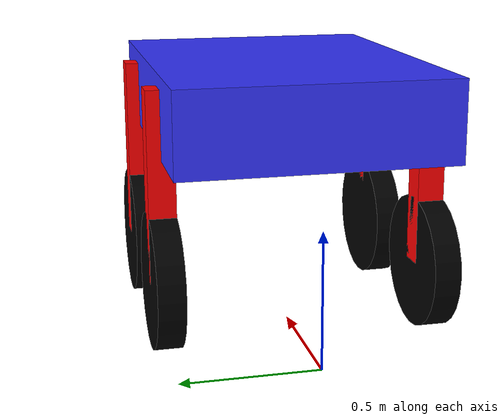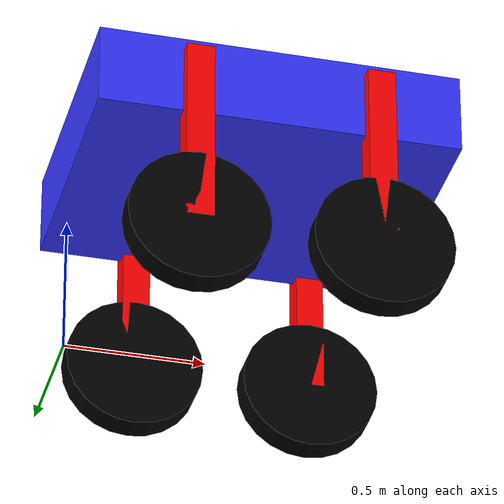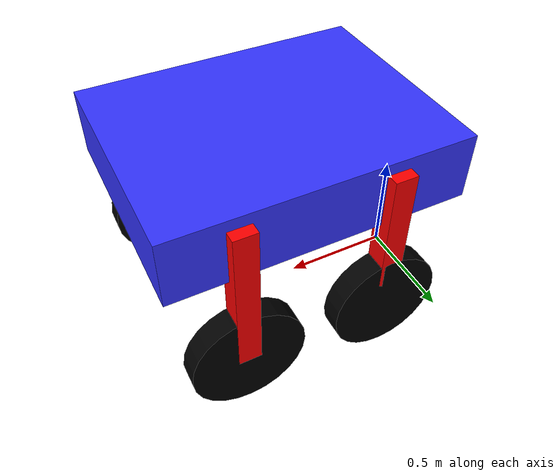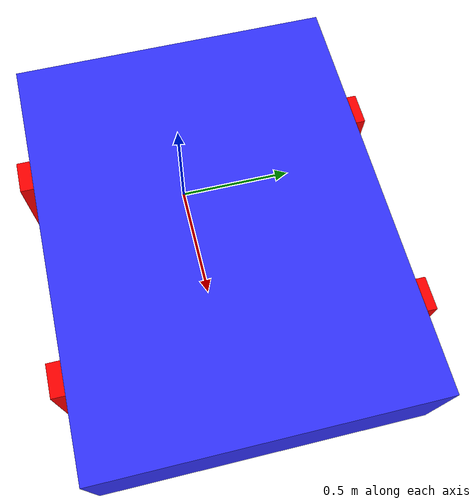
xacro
<?xml version="1.0"?>
<robot xmlns:xacro="http://www.ros.org/wiki/xacro">

     <xacro:include filename="inertial_macros.xacro" />

    <xacro:property name="chassis_length" value="1.3"/>
    <xacro:property name="chassis_width" value="1.0"/>
    <xacro:property name="chassis_height" value="0.3"/>
    <xacro:property name="chassis_mass" value="3.0"/>

    <xacro:property name="leg_length" value="0.1"/>
    <xacro:property name="leg_width" value="0.1"/>
    <xacro:property name="leg_height" value="0.7"/>
    <xacro:property name="leg_mass" value="0.5"/>

    <xacro:property name="leg_offset_x" value="1.0"/>
    <xacro:property name="leg_offset_y" value="0.5"/>
    <xacro:property name="leg_offset_z" value="0.1"/>

    <xacro:property name="wheel_radius" value="0.25"/>
    <xacro:property name="wheel_thickness" value="0.1"/>
    <xacro:property name="wheel_mass" value="0.5"/>

    <xacro:property name="wheel_offset_x" value="1.0"/>
    <xacro:property name="wheel_offset_y" value="0.5"/>
    <xacro:property name="wheel_offset_z" value="0.01"/>

    <xacro:property name="caster_wheel_offset_x" value="0.350"/>
    <xacro:property name="caster_wheel_offset_z" value="${wheel_offset_z - wheel_radius + caster_wheel_radius}"/>

    <material name="white">
        <color rgba="1 1 1 1" />
    </material>

    <material name="orange">
        <color rgba="1 0.3 0.1 1"/>
    </material>

    <material name="blue">
        <color rgba="0.2 0.2 1 1"/>
    </material>

    <material name="black">
        <color rgba="0 0 0 1"/>
    </material>

    <material name="red">
        <color rgba="1 0 0 1"/>
    </material>

    <!-- BASE_FOOTPRINT LINK -->

    <link name="base_footprint"/>

   <!-- BASE LINK -->

    <joint name="base_joint" type="fixed">
        <parent link="base_footprint"/>
        <child link="base_link"/>
        <origin xyz="0 0 0.7"/>
    </joint>

    <link name="base_link">

        <visual>
            <origin xyz="${chassis_length/2} 0 ${chassis_height/2}"/>
            <geometry>
                <box size="${chassis_length} ${chassis_width} ${chassis_height}"/>
            </geometry>
            <material name="blue"/>
        </visual>
        <collision>
            <origin xyz="${chassis_length/2} 0 ${chassis_height/2}"/>
            <geometry>
                <box size="${chassis_length} ${chassis_width} ${chassis_height}"/>
            </geometry>
        </collision>
        <xacro:inertial_box mass="0.5" x="${chassis_length}" y="${chassis_width}" z="${chassis_height}">
            <origin xyz="${chassis_length/2} 0 ${chassis_height/2}" rpy="0 0 0"/>
        </xacro:inertial_box>
    </link>

    <!-- LEFT WHEEL LINK -->

    <joint name="left_wheel_joint" type="continuous">
        <parent link="left_leg_link"/>
        <child link="left_wheel"/>
        <origin xyz="0 0 -0.35" rpy="-${pi/2} 0 0" />
        <axis xyz="0 0 1"/>
        <disable_collision>0</disable_collision>

    </joint>

    <joint name="left_wheel_leg_joint" type="fixed">
        <parent link="base_link"/>
        <child link="left_leg_link"/>
        <origin xyz="${leg_offset_x} ${leg_offset_y} ${-leg_offset_z}" rpy="0 0 0"/>
        <axis xyz="0 0 1"/>

    </joint>

    <!-- Left leg link -->
    <link name="left_leg_link">
        <visual>
            <geometry>
                <box size="${leg_length} ${leg_width} ${leg_height}"/>
            </geometry>
            <material name="red"/>
        </visual>
        <collision>
            <geometry>
                <box size="${leg_length} ${leg_width} ${leg_height}"/>
            </geometry>
        </collision>
        <xacro:inertial_box mass="0.2" x="${leg_length}" y="${leg_width}" z="${leg_height}">
            <origin xyz="${leg_length/2} 0 ${leg_height/2}" rpy="0 0 0"/>
        </xacro:inertial_box>
    </link>

    <link name="left_wheel">
        <visual>
            <geometry>
                <cylinder radius="${wheel_radius}" length="${wheel_thickness}"/>
            </geometry>
            <material name="black"/>
        </visual>
        <collision>
            <geometry>
                <sphere radius="${wheel_radius}"/>
            </geometry>
        </collision>
        <xacro:inertial_cylinder mass="${wheel_mass}" length="${wheel_thickness}" radius="${wheel_radius}">
            <origin xyz="0 0 0" rpy="0 0 0"/>
        </xacro:inertial_cylinder>
    </link>

    <!-- RIGHT WHEEL LINK -->

    <joint name="right_wheel_joint" type="continuous">
        <parent link="right_leg_link"/>
        <child link="right_wheel"/>
        <origin xyz="0 0 -0.35" rpy="-${pi/2} 0 0" />
        <axis xyz="0 0 1"/>
        <disable_collision>0</disable_collision>
    </joint>

    <joint name="right_wheel_leg_joint" type="fixed">
        <parent link="base_link"/>
        <child link="right_leg_link"/>
        <origin xyz="${leg_offset_x} ${-leg_offset_y} ${-leg_offset_z}" rpy="0 0 0"/>
        <axis xyz="0 0 1"/>

    </joint>

    <!-- Right leg link -->
    <link name="right_leg_link">
         <visual>
            <geometry>
                <box size="${leg_length} ${leg_width} ${leg_height}"/>
            </geometry>
            <material name="red"/>
        </visual>
        <collision>
            <geometry>
                <box size="${leg_length} ${leg_width} ${leg_height}"/>
            </geometry>
        </collision>
        <xacro:inertial_box mass="0.2" x="${leg_length}" y="${leg_width}" z="${leg_height}">
            <origin xyz="${leg_length/2} 0 ${leg_height/2}" rpy="0 0 0"/>
        </xacro:inertial_box>
    </link>

    <link name="right_wheel">
        <visual>
            <geometry>
                <cylinder radius="${wheel_radius}" length="${wheel_thickness}"/>
            </geometry>
            <material name="black"/>
        </visual>
        <collision>
            <geometry>
                <sphere radius="${wheel_radius}"/>
            </geometry>
        </collision>
        <xacro:inertial_cylinder mass="${wheel_mass}" length="${wheel_thickness}" radius="${wheel_radius}">
            <origin xyz="0 0 0" rpy="0 0 0"/>
        </xacro:inertial_cylinder>
    </link>

     <!-- wheel back right-->

<joint name="wheel_back_right_joint" type="continuous">

    <parent link="right_back_leg_link"/>
    <child link="wheel_back_right"/>
      <origin xyz="0 0 -0.35" rpy="-${pi/2} 0 0" />
    <axis xyz="0 0 1"/>
    <disable_collision>0</disable_collision>

</joint>

<joint name="right_wheel_back_leg_joint" type="fixed">
        <parent link="base_link"/>
        <child link="right_back_leg_link"/>
        <origin xyz="${caster_wheel_offset_x} ${-wheel_offset_y} ${-leg_offset_z}" rpy="0.0 0.0 0.0"/>
        <axis xyz="0 0 1"/>

    </joint>

    <!-- Right back leg link -->
    <link name="right_back_leg_link">
         <visual>
            <geometry>
                <box size="${leg_length} ${leg_width} ${leg_height}"/>
            </geometry>
            <material name="red"/>
        </visual>
        <collision>
            <geometry>
                <box size="${leg_length} ${leg_width} ${leg_height}"/>
            </geometry>
        </collision>
        <xacro:inertial_box mass="0.2" x="${leg_length}" y="${leg_width}" z="${leg_height}">
            <origin xyz="${leg_length/2} 0 ${leg_height/2}" rpy="0 0 0"/>
        </xacro:inertial_box>
    </link>

<link name="wheel_back_right">
    <visual>
            <geometry>
                <cylinder radius="${wheel_radius}" length="${wheel_thickness}"/>
            </geometry>
            <material name="black"/>
        </visual>
        <collision>
            <geometry>
                <sphere radius="${wheel_radius}"/>
            </geometry>
        </collision>
        <xacro:inertial_cylinder mass="${wheel_mass}" length="${wheel_thickness}" radius="${wheel_radius}">
            <origin xyz="0 0 0" rpy="0 0 0"/>
        </xacro:inertial_cylinder>
</link>

<!-- wheel back left-->
<joint name="wheel_back_left_joint" type="continuous">

    <parent link="left_back_leg_link"/>
    <child link="wheel_back_left"/>
      <origin xyz="0 0 -0.35" rpy="-${pi/2} 0 0" />
    <axis xyz="0 0 1"/>
    <disable_collision>0</disable_collision>

</joint>

<joint name="left_wheel_back_leg_joint" type="fixed">
        <parent link="base_link"/>
        <child link="left_back_leg_link"/>
        <origin xyz="${caster_wheel_offset_x} ${wheel_offset_y} ${-leg_offset_z}" rpy="0.0 0.0 0.0"/>
        <axis xyz="0 0 1"/>

    </joint>

    <!-- left back leg link -->
    <link name="left_back_leg_link">
         <visual>
            <geometry>
                <box size="${leg_length} ${leg_width} ${leg_height}"/>
            </geometry>
            <material name="red"/>
        </visual>
        <collision>
            <geometry>
                <box size="${leg_length} ${leg_width} ${leg_height}"/>
            </geometry>
        </collision>
        <xacro:inertial_box mass="0.2" x="${leg_length}" y="${leg_width}" z="${leg_height}">
            <origin xyz="${leg_length/2} 0 ${leg_height/2}" rpy="0 0 0"/>
        </xacro:inertial_box>
    </link>

<link name="wheel_back_left">
    <visual>
            <geometry>
                <cylinder radius="${wheel_radius}" length="${wheel_thickness}"/>
            </geometry>
            <material name="black"/>
        </visual>
        <collision>
            <geometry>
                <sphere radius="${wheel_radius}"/>
            </geometry>
        </collision>
        <xacro:inertial_cylinder mass="${wheel_mass}" length="${wheel_thickness}" radius="${wheel_radius}">
            <origin xyz="0 0 0" rpy="0 0 0"/>
        </xacro:inertial_cylinder>
</link>

</robot>
